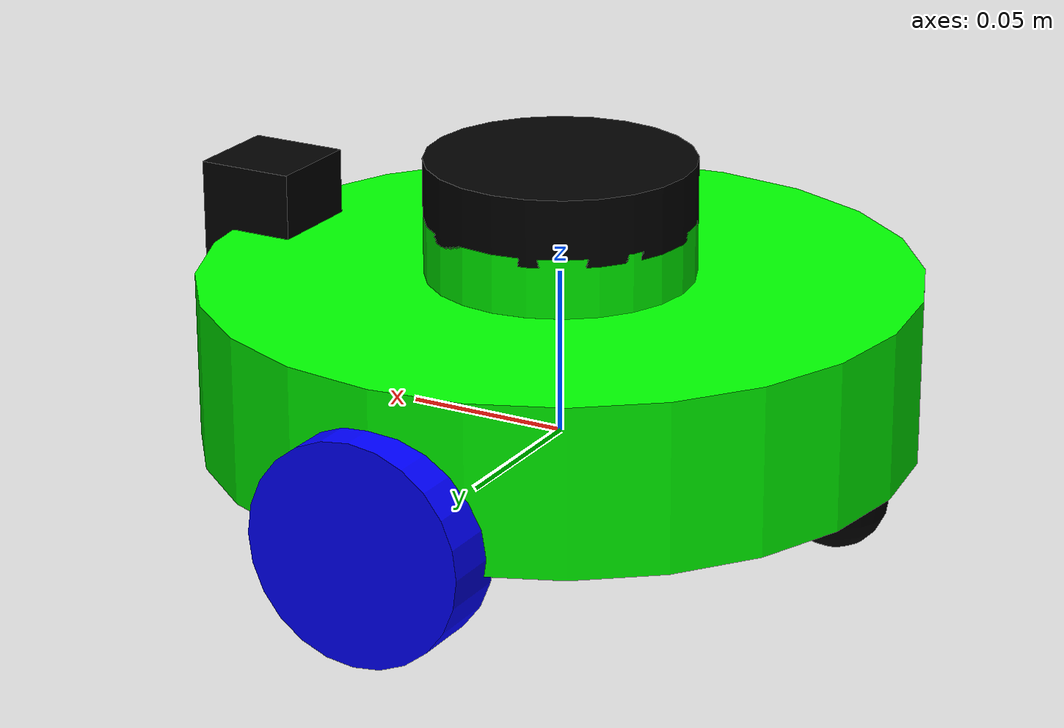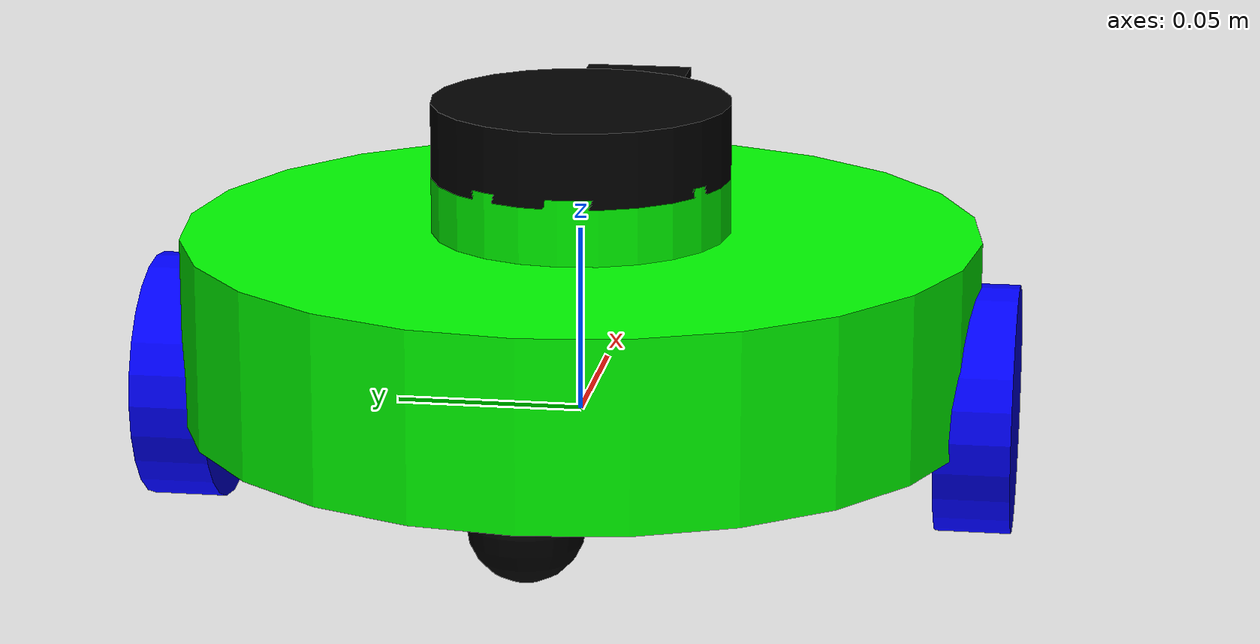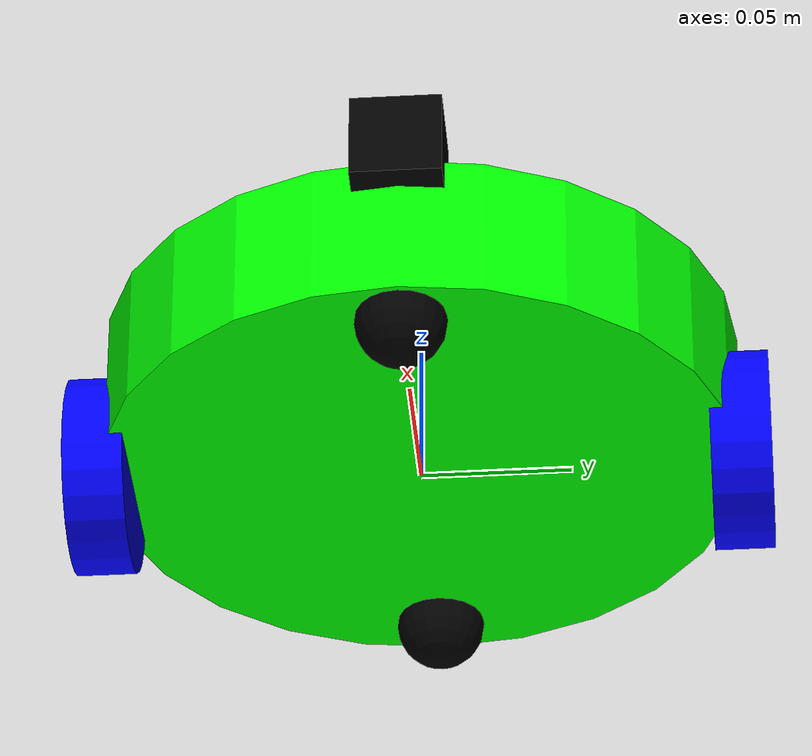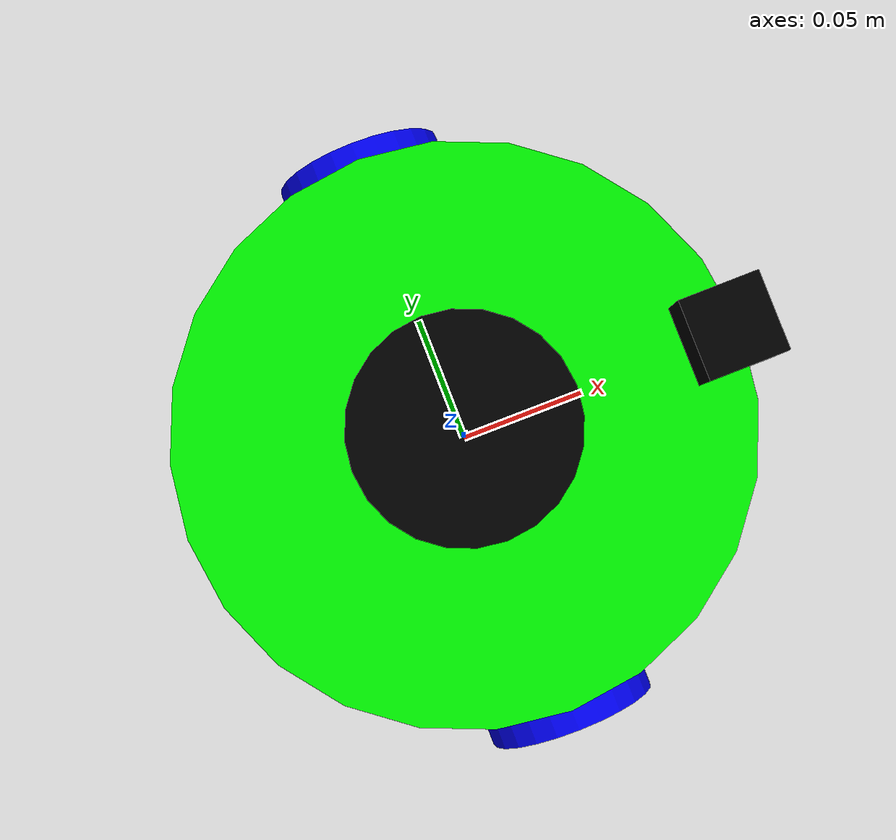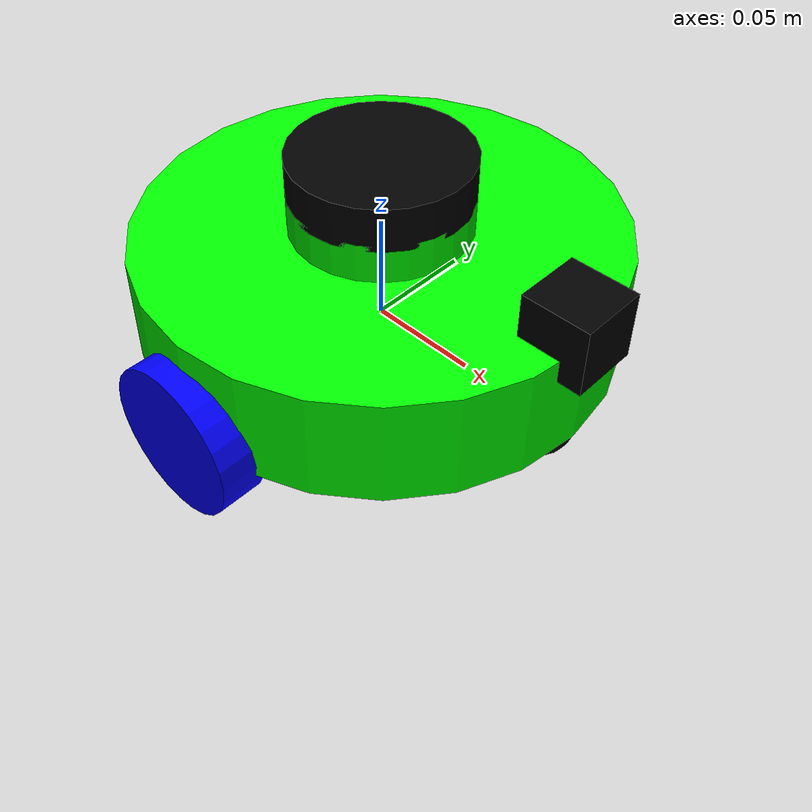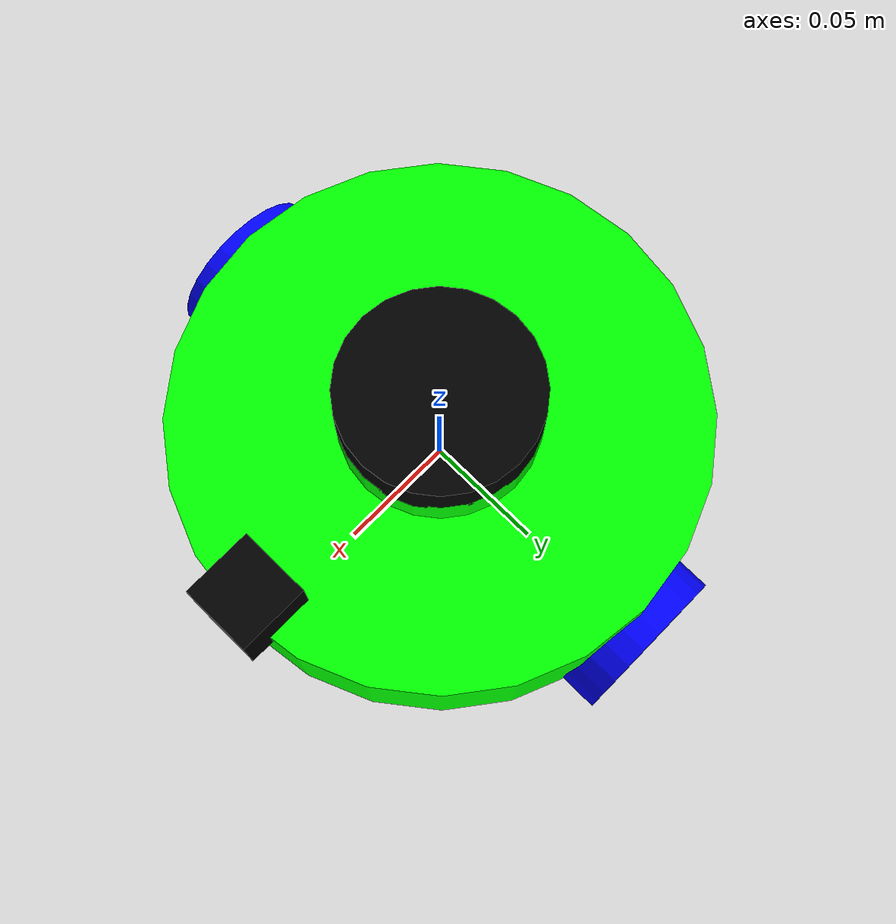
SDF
<?xml version="1.0" ?>
<sdf version="1.8">
  <model name='jetbot' canonical_link='base_link'>

    <!-- Hlavné telo robota -->
    <link name='base_link'>
      <pose relative_to='__model__'>0 0 0.025 0 0 0</pose>
      <inertial>
        <mass>1.6</mass>
        <inertia>
          <ixx>0.021</ixx>
          <ixy>0</ixy>
          <ixz>0</ixz>
          <iyy>0.021</iyy>
          <iyz>0</iyz>
          <izz>0.042</izz>
        </inertia>
      </inertial>
      <visual name='base_link_visual'>
        <geometry>
          <cylinder>
            <radius>0.1066</radius>
            <length>0.05</length>
          </cylinder>
        </geometry>
        <material>
          <ambient>0.0 1.0 0.0 1</ambient>
          <diffuse>0.0 1.0 0.0 1</diffuse>
          <specular>0.0 1.0 0.0 1</specular>
        </material>
      </visual>
      <collision name='base_link_collision'>
        <geometry>
          <cylinder>
            <radius>0.1066</radius>
            <length>0.05</length>
          </cylinder>
        </geometry>
      </collision>

      <!-- Sensor pre IMU -->
      <sensor name="imu_sensor" type="imu">
        <update_rate>100</update_rate>
        <always_on>1</always_on>
        <visualize>true</visualize>
        <topic>/imu</topic>
      </sensor>

      <!-- Sensor pre kontaktný senzor -->
      <sensor name="contact_sensor" type="contact">
        <update_rate>100</update_rate>
        <contact>
          <collision>base_link_collision</collision>
          <collision>left_wheel_collision</collision>
          <collision>right_wheel_collision</collision>
        </contact>
      </sensor>
    </link>

    <!-- Ľavé koleso -->
    <link name='left_wheel'>
      <pose relative_to="base_link">0 0.1066 -0.02 1.5707 0 0</pose>
      <inertial>
        <mass>0.1</mass>
        <inertia>
          <ixx>0.001</ixx>
          <ixy>0</ixy>
          <ixz>0</ixz>
          <iyy>0.001</iyy>
          <iyz>0</iyz>
          <izz>0.002</izz>
        </inertia>
      </inertial>
      <visual name='left_wheel_visual'>
        <geometry>
          <cylinder>
            <radius>0.033</radius>
            <length>0.02</length>
          </cylinder>
        </geometry>
        <material>
          <ambient>0.0 0.0 1.0 1</ambient>
          <diffuse>0.0 0.0 1.0 1</diffuse>
          <specular>0.0 0.0 1.0 1</specular>
        </material>
      </visual>
      <collision name='left_wheel_collision'>
        <geometry>
          <cylinder>
            <radius>0.033</radius>
            <length>0.02</length>
          </cylinder>
        </geometry>
      </collision>
    </link>
    <joint name='left_wheel_joint' type='revolute'>
      <pose relative_to='left_wheel'/>
      <parent>base_link</parent>
      <child>left_wheel</child>
      <dynamics damping="0.1" friction="0.05"/>
      <axis>
        <xyz expressed_in='__model__'>0 1 0</xyz>
        <limit>
          <lower>-1.79769e+308</lower>
          <upper>1.79769e+308</upper>
        </limit>
      </axis>
    </joint>

    <!-- Pravé koleso -->
    <link name='right_wheel'>
      <pose relative_to="base_link">0 -0.1066 -0.02 1.5707 0 0</pose>
      <inertial>
        <mass>0.1</mass>
        <inertia>
          <ixx>0.001</ixx>
          <ixy>0</ixy>
          <ixz>0</ixz>
          <iyy>0.001</iyy>
          <iyz>0</iyz>
          <izz>0.002</izz>
        </inertia>
      </inertial>
      <visual name='right_wheel_visual'>
        <geometry>
          <cylinder>
            <radius>0.033</radius>
            <length>0.02</length>
          </cylinder>
        </geometry>
        <material>
          <ambient>0.0 0.0 1.0 1</ambient>
          <diffuse>0.0 0.0 1.0 1</diffuse>
          <specular>0.0 0.0 1.0 1</specular>
        </material>
      </visual>
      <collision name='right_wheel_collision'>
        <geometry>
          <cylinder>
            <radius>0.033</radius>
            <length>0.02</length>
          </cylinder>
        </geometry>
      </collision>
    </link>
    <joint name='right_wheel_joint' type='revolute'>
      <pose relative_to='right_wheel'/>
      <parent>base_link</parent>
      <child>right_wheel</child>
      <dynamics damping="0.1" friction="0.05"/>
      <axis>
        <xyz expressed_in='__model__'>0 1 0</xyz>
        <limit>
          <lower>-1.79769e+308</lower>
          <upper>1.79769e+308</upper>
        </limit>
      </axis>
    </joint>

    <!-- Pomocné koleso -->
    <link name='balance_wheel'>
      <pose relative_to="base_link">0.09 0 -0.027 0 0 0</pose>
      <inertial>
        <mass>0.05</mass>
        <inertia>
          <ixx>0.0005</ixx>
          <ixy>0</ixy>
          <ixz>0</ixz>
          <iyy>0.0005</iyy>
          <iyz>0</iyz>
          <izz>0.0005</izz>
        </inertia>
      </inertial>
      <visual name='balance_wheel_visual'>
        <geometry>
          <sphere>
            <radius>0.015</radius>
          </sphere>
        </geometry>
          <material>
            <ambient>0 0 0 1</ambient>
            <diffuse>0 0 0 1</diffuse>
            <specular>0 0 0 1</specular>
          </material>
      </visual>
      <collision name='balance_wheel_collision'>
        <geometry>
          <sphere>
            <radius>0.015</radius>
          </sphere>
        </geometry>
      </collision>
    </link>
    <joint name='balance_joint' type='ball'>
      <parent>base_link</parent>
      <child>balance_wheel</child>
      <dynamics damping="0.1" friction="0.05"/>
    </joint>

    <!-- Pomocné koleso_2 -->
    <link name='balance_wheel_2'>
      <pose relative_to="base_link">-0.09 0 -0.027 0 0 0</pose>
      <inertial>
        <mass>0.05</mass>
        <inertia>
          <ixx>0.0005</ixx>
          <ixy>0</ixy>
          <ixz>0</ixz>
          <iyy>0.0005</iyy>
          <iyz>0</iyz>
          <izz>0.0005</izz>
        </inertia>
      </inertial>
      <visual name='balance_wheel_2_visual'>
        <geometry>
          <sphere>
            <radius>0.015</radius>
          </sphere>
        </geometry>
          <material>
            <ambient>0 0 0 1</ambient>
            <diffuse>0 0 0 1</diffuse>
            <specular>0 0 0 1</specular>
          </material>
      </visual>
      <collision name='balance_wheel_2_collision'>
        <geometry>
          <sphere>
            <radius>0.015</radius>
          </sphere>
        </geometry>
      </collision>
    </link>
    <joint name='balance_joint_2' type='ball'>
      <parent>base_link</parent>
      <child>balance_wheel_2</child>
      <dynamics damping="0.1" friction="0.05"/>
    </joint>

    <!-- Kamera -->
    <link name="camera">
      <pose relative_to="base_link">0.1 0 0.03 0 0 0</pose>
      <visual name='camera_visual'>
        <geometry>
          <box>
            <size>0.03 0.03 0.03</size>
          </box>
        </geometry>
        <material>
          <ambient>0 0 0 1</ambient>
          <diffuse>0 0 0 1</diffuse>
          <specular>0 0 0 1</specular>
        </material>
      </visual>
      <collision name='camera_collision'>
        <geometry>
          <box>
            <size>0.03 0.03 0.03</size>
          </box>
        </geometry>
      </collision>
      <sensor name="sim_camera" type="camera">
        <topic>image</topic>
        <gz_frame_id>camera</gz_frame_id>
        <update_rate>30</update_rate>
        <camera>
          <horizontal_fov>1.39626</horizontal_fov>
          <image>
            <width>640</width>
            <height>480</height>
            <format>R8G8B8</format>
          </image>
          <clip>
            <near>0.1</near>
            <far>100</far>
          </clip>
        </camera>
      </sensor>
    </link>
    <joint name='camera_joint' type='fixed'>
      <parent>base_link</parent>
      <child>camera</child>
    </joint>

    <!-- Podstavec pre LIDAR -->
    <link name='lidar_base'>
      <pose relative_to="base_link">0 0 0.025 0 0 0</pose>
      <inertial>
        <mass>0.1</mass>
        <inertia>
          <ixx>0.001</ixx>
          <ixy>0</ixy>
          <ixz>0</ixz>
          <iyy>0.001</iyy>
          <iyz>0</iyz>
          <izz>0.002</izz>
        </inertia>
      </inertial>
      <visual name='lidar_base_visual'>
        <geometry>
          <cylinder>
            <radius>0.04</radius>
            <length>0.035</length>
          </cylinder>
        </geometry>
        <material>
          <ambient>0 1 0 1</ambient>
          <diffuse>0 1 0 1</diffuse>
          <specular>0 1 0 1</specular>
        </material>
      </visual>
      <collision name='lidar_base_collision'>
        <geometry>
          <cylinder>
            <radius>0.04</radius>
            <length>0.035</length>
          </cylinder>
        </geometry>
      </collision>
    </link>
    <joint name='lidar_base_joint' type='fixed'>
      <parent>base_link</parent>
      <child>lidar_base</child>
    </joint>

    <!-- LIDAR -->
    <link name='lidar'>
      <pose relative_to="lidar_base">0 0 0.025 0 0 0</pose>
      <visual name='lidar_visual'>
        <geometry>
          <cylinder>
            <radius>0.04</radius>
            <length>0.02</length>
          </cylinder>
        </geometry>
        <material>
          <ambient>0 0 0 1</ambient>
          <diffuse>0 0 0 1</diffuse>
          <specular>0 0 0 1</specular>
        </material>
      </visual>
      <collision name='lidar_collision'>
        <geometry>
          <cylinder>
            <radius>0.04</radius>
            <length>0.02</length>
          </cylinder>
        </geometry>
      </collision>
      <sensor name="lidar_sensor" type="gpu_lidar">
        <topic>scan</topic>
        <gz_frame_id>lidar</gz_frame_id>
        <update_rate>20</update_rate>
        <ray>
          <scan>
            <horizontal>
              <samples>720</samples>
              <resolution>1</resolution>
              <min_angle>-1.57</min_angle>
              <max_angle>1.57</max_angle>
            </horizontal>
            <vertical>
              <samples>1</samples>
              <resolution>1</resolution>
              <min_angle>0</min_angle>
              <max_angle>0</max_angle>
            </vertical>
          </scan>
          <range>
            <min>0.12</min>
            <max>10.0</max>
            <resolution>0.01</resolution>
          </range>
        </ray>
        <always_on>1</always_on>
        <visualize>true</visualize>
      </sensor>
    </link>
    <joint name='lidar_joint' type='fixed'>
      <parent>lidar_base</parent>
      <child>lidar</child>
    </joint>

    <!-- Diferenciálny pohon -->
    <plugin filename="gz-sim-diff-drive-system" name="gz::sim::systems::DiffDrive">
      <left_joint>left_wheel_joint</left_joint>
      <right_joint>right_wheel_joint</right_joint>
      <wheel_separation>0.21325</wheel_separation>
      <wheel_radius>0.033</wheel_radius>
      <odom_topic>odom</odom_topic>
      <odom_publish_frequency>10</odom_publish_frequency>
      <topic>cmd_vel</topic>
      <cmd_timeout>0.5</cmd_timeout>
      <tf_topic>tf</tf_topic>
      <frame_id>odom</frame_id>
      <child_frame_id>base_link</child_frame_id>
      <publish_tf>true</publish_tf>
    </plugin>

    <!-- JointStatePublisher plugin -->
    <plugin filename="gz-sim-joint-state-publisher-system" name="gz::sim::systems::JointStatePublisher">
      <topic>joint_states</topic>
      <joint_name>left_wheel_joint</joint_name>
      <joint_name>right_wheel_joint</joint_name>
      <joint_name>balance_joint</joint_name>
      <joint_name>balance_joint_2</joint_name>
    </plugin>

  </model>
</sdf>
